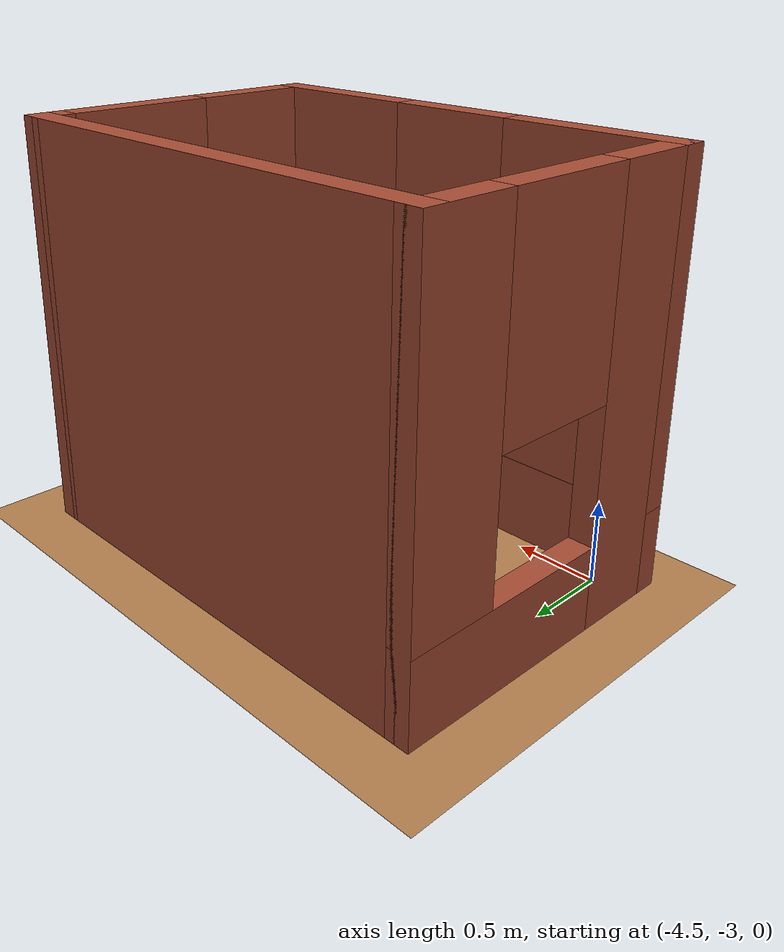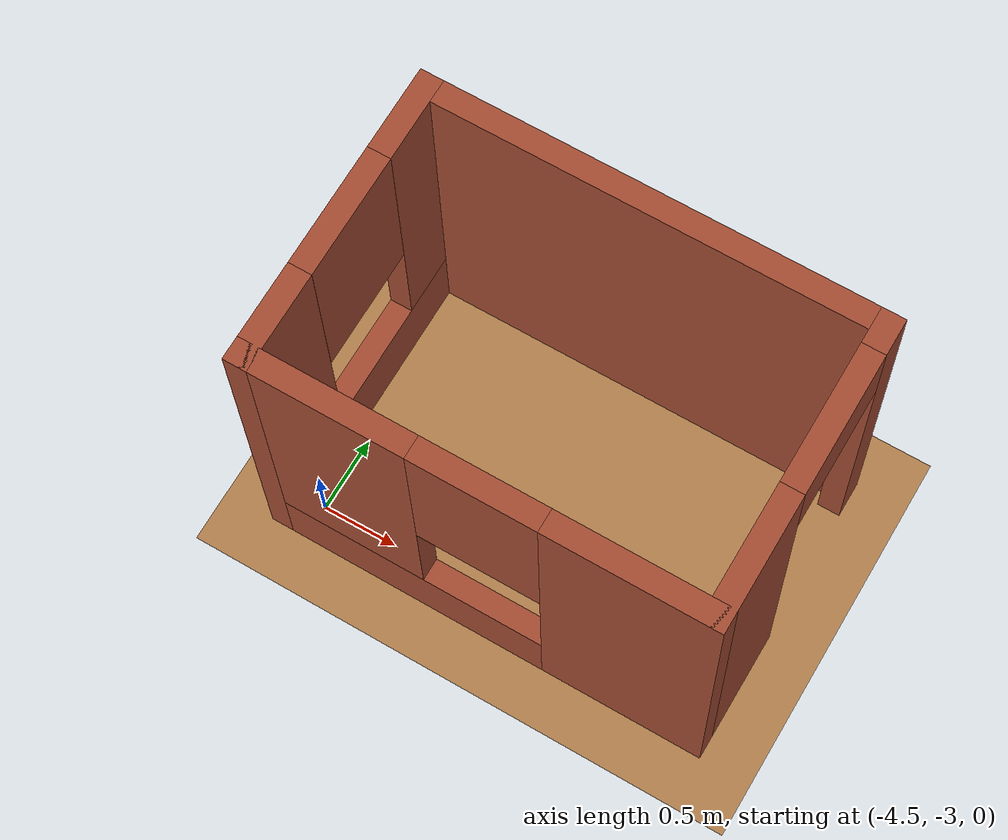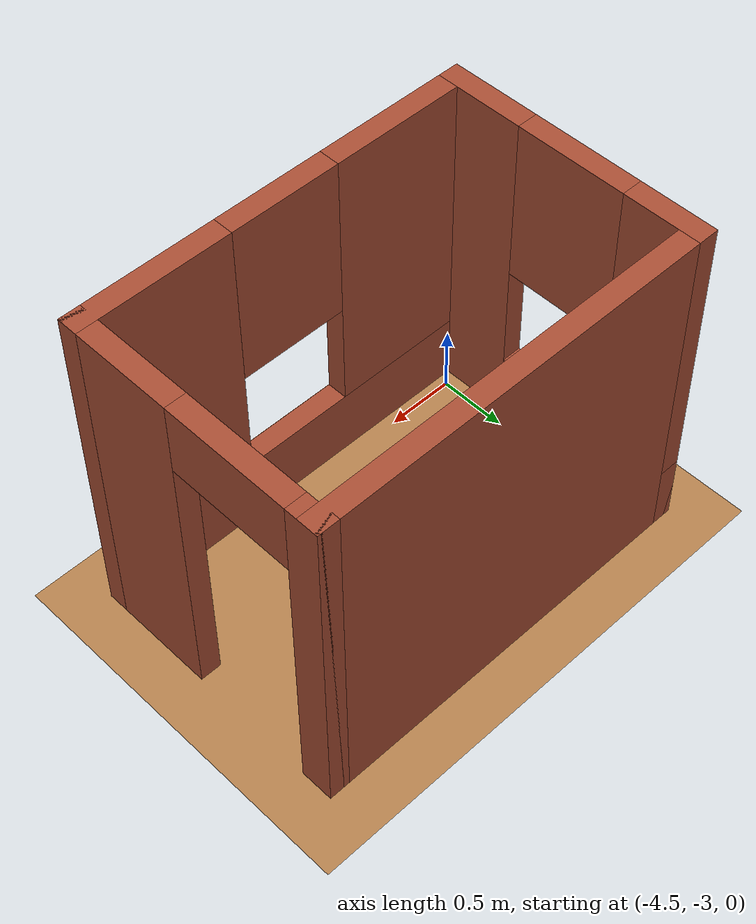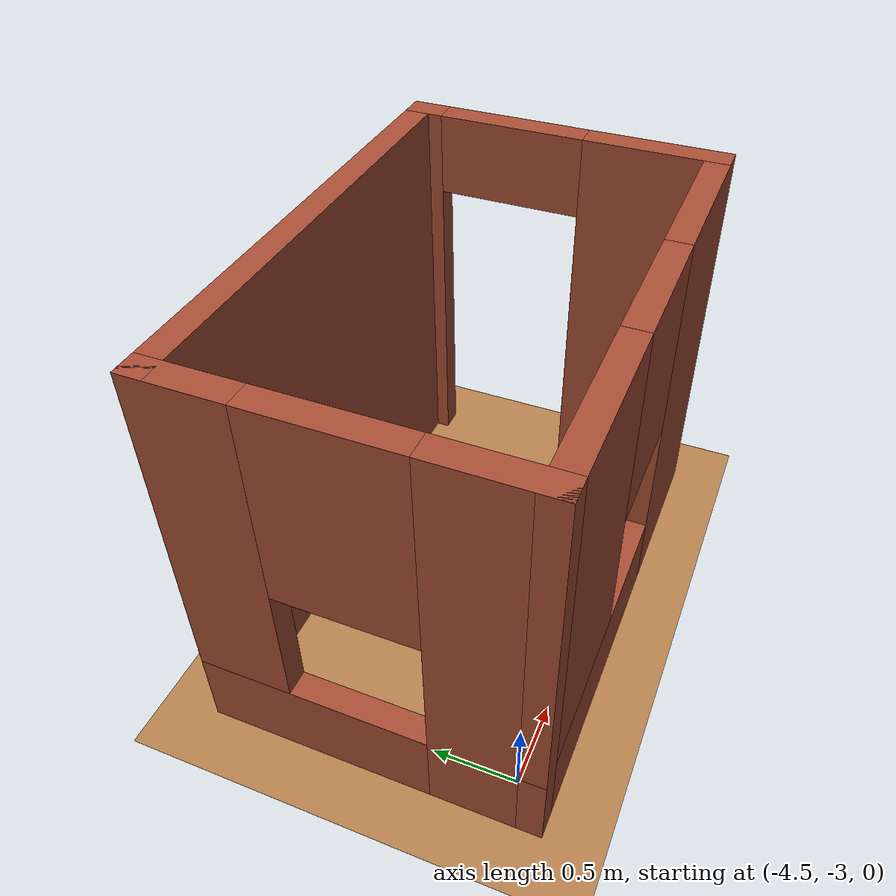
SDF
<sdf version="1.6">
 <world name="default">
  <light name="sun" type="directional">
   <pose>0 0 10 0 -0 0</pose>
   <diffuse>0.8 0.8 0.8 1</diffuse>
   <specular>0.2 0.2 0.2 1</specular>
   <attenuation>
    <range>1000</range>
    <constant>0.9</constant>
    <linear>0.01</linear>
    <quadratic>0.001</quadratic>
   </attenuation>
   <direction>-0.5 0.1 -0.9</direction>
  </light>
  <model name="ground_plane">
   <static>1</static>
   <link name="link">
    <collision name="collision">
     <geometry><plane><normal>0 0 1</normal><size>100000 100000</size></plane></geometry>
     <surface>
      <contact><collide_bitmask>65535</collide_bitmask></contact>
      <friction><ode><mu>100</mu><mu2>50</mu2></ode></friction>
     </surface>
    </collision>
    <visual name="visual">
     <cast_shadows>0</cast_shadows>
     <geometry><plane><normal>0 0 1</normal><size>100 100</size></plane></geometry>
     <material>
      <script><uri>file://media/materials/scripts/gazebo.material</uri><name>Gazebo/WoodFloor</name></script>
     </material>
    </visual>
   </link>
  </model>
  <gravity>0 0 -9.8</gravity>
  <magnetic_field>6e-06 2.3e-05 -4.2e-05</magnetic_field>
  <atmosphere type="adiabatic"/>
  <physics name="default_physics" default="0" type="ode">
   <max_step_size>0.0001</max_step_size>
   <real_time_factor>1</real_time_factor>
   <real_time_update_rate>1000</real_time_update_rate>
   <ode><constraints><contact_max_correcting_vel>20000.0</contact_max_correcting_vel></constraints></ode>
  </physics>
  <scene><ambient>0.4 0.4 0.4 1</ambient><background>0.7 0.7 0.7 1</background><shadows>1</shadows></scene>
  <audio><device>default</device></audio>
  <spherical_coordinates>
   <surface_model>EARTH_WGS84</surface_model>
   <latitude_deg>0</latitude_deg>
   <longitude_deg>0</longitude_deg>
   <elevation>0</elevation>
   <heading_deg>0</heading_deg>
  </spherical_coordinates>
  <model name="casa_simples">
   <pose>-3.245 -2.225 0 0 -0 0</pose>
   <link name="Wall_0">
    <pose>-1.425 0 0 0 -0 1.5708</pose>
    <visual name="Wall_0_Visual_0">
     <pose>-0.6775 0 1.25 0 -0 0</pose>
     <geometry><box><size>0.645 0.15 2.5</size></box></geometry>
     <material>
      <script><uri>file://media/materials/scripts/gazebo.material</uri><name>Gazebo/Bricks</name></script>
      <ambient>1 1 1 1</ambient>
     </material>
     <meta><layer>0</layer></meta>
    </visual>
    <collision name="Wall_0_Collision_0">
     <geometry><box><size>0.645 0.15 2.5</size></box></geometry>
     <pose>-0.6775 0 1.25 0 -0 0</pose>
    </collision>
    <visual name="Wall_0_Visual_1">
     <pose>0.3225 0 0.25 0 -0 0</pose>
     <geometry><box><size>1.355 0.15 0.5</size></box></geometry>
     <material>
      <script><uri>file://media/materials/scripts/gazebo.material</uri><name>Gazebo/Bricks</name></script>
      <ambient>1 1 1 1</ambient>
     </material>
     <meta><layer>0</layer></meta>
    </visual>
    <collision name="Wall_0_Collision_1">
     <geometry><box><size>1.355 0.15 0.5</size></box></geometry>
     <pose>0.3225 0 0.25 0 -0 0</pose>
    </collision>
    <visual name="Wall_0_Visual_2">
     <pose>0.7225 0 1.5 0 -0 0</pose>
     <geometry><box><size>0.555 0.15 2</size></box></geometry>
     <material>
      <script><uri>file://media/materials/scripts/gazebo.material</uri><name>Gazebo/Bricks</name></script>
      <ambient>1 1 1 1</ambient>
     </material>
     <meta><layer>0</layer></meta>
    </visual>
    <collision name="Wall_0_Collision_2">
     <geometry><box><size>0.555 0.15 2</size></box></geometry>
     <pose>0.7225 0 1.5 0 -0 0</pose>
    </collision>
    <visual name="Wall_0_Visual_3">
     <pose>0.045 0 1.9 0 -0 0</pose>
     <geometry><box><size>0.8 0.15 1.2</size></box></geometry>
     <material>
      <script><uri>file://media/materials/scripts/gazebo.material</uri><name>Gazebo/Bricks</name></script>
      <ambient>1 1 1 1</ambient>
     </material>
     <meta><layer>0</layer></meta>
    </visual>
    <collision name="Wall_0_Collision_3">
     <geometry><box><size>0.8 0.15 1.2</size></box></geometry>
     <pose>0.045 0 1.9 0 -0 0</pose>
    </collision>
   </link>
   <link name="Wall_1">
    <collision name="Wall_1_Collision">
     <geometry><box><size>3 0.15 2.5</size></box></geometry>
     <pose>0 0 1.25 0 -0 0</pose>
    </collision>
    <visual name="Wall_1_Visual">
     <pose>0 0 1.25 0 -0 0</pose>
     <geometry><box><size>3 0.15 2.5</size></box></geometry>
     <material>
      <script><uri>file://media/materials/scripts/gazebo.material</uri><name>Gazebo/Bricks</name></script>
      <ambient>1 1 1 1</ambient>
     </material>
     <meta><layer>0</layer></meta>
    </visual>
    <pose>0 0.925 0 0 -0 0</pose>
   </link>
   <link name="Wall_2">
    <pose>1.425 0 0 0 -0 -1.5708</pose>
    <visual name="Wall_2_Visual_0">
     <pose>-0.8825 0 1.25 0 -0 0</pose>
     <geometry><box><size>0.235 0.15 2.5</size></box></geometry>
     <material>
      <script><uri>file://media/materials/scripts/gazebo.material</uri><name>Gazebo/Bricks</name></script>
      <ambient>1 1 1 1</ambient>
     </material>
     <meta><layer>0</layer></meta>
    </visual>
    <collision name="Wall_2_Collision_0">
     <geometry><box><size>0.235 0.15 2.5</size></box></geometry>
     <pose>-0.8825 0 1.25 0 -0 0</pose>
    </collision>
    <visual name="Wall_2_Visual_1">
     <pose>0.5675 0 1.25 0 -0 0</pose>
     <geometry><box><size>0.865 0.15 2.5</size></box></geometry>
     <material>
      <script><uri>file://media/materials/scripts/gazebo.material</uri><name>Gazebo/Bricks</name></script>
      <ambient>1 1 1 1</ambient>
     </material>
     <meta><layer>0</layer></meta>
    </visual>
    <collision name="Wall_2_Collision_1">
     <geometry><box><size>0.865 0.15 2.5</size></box></geometry>
     <pose>0.5675 0 1.25 0 -0 0</pose>
    </collision>
    <visual name="Wall_2_Visual_2">
     <pose>-0.315 0 2.25 0 -0 0</pose>
     <geometry><box><size>0.9 0.15 0.5</size></box></geometry>
     <material>
      <script><uri>file://media/materials/scripts/gazebo.material</uri><name>Gazebo/Bricks</name></script>
      <ambient>1 1 1 1</ambient>
     </material>
     <meta><layer>0</layer></meta>
    </visual>
    <collision name="Wall_2_Collision_2">
     <geometry><box><size>0.9 0.15 0.5</size></box></geometry>
     <pose>-0.315 0 2.25 0 -0 0</pose>
    </collision>
   </link>
   <link name="Wall_3">
    <pose>0 -0.925 0 0 -0 3.14159</pose>
    <visual name="Wall_3_Visual_0">
     <pose>-0.9575 0 1.25 0 -0 0</pose>
     <geometry><box><size>1.085 0.15 2.5</size></box></geometry>
     <material>
      <script><uri>file://media/materials/scripts/gazebo.material</uri><name>Gazebo/Bricks</name></script>
      <ambient>1 1 1 1</ambient>
     </material>
     <meta><layer>0</layer></meta>
    </visual>
    <collision name="Wall_3_Collision_0">
     <geometry><box><size>1.085 0.15 2.5</size></box></geometry>
     <pose>-0.9575 0 1.25 0 -0 0</pose>
    </collision>
    <visual name="Wall_3_Visual_1">
     <pose>0.5425 0 0.25 0 -0 0</pose>
     <geometry><box><size>1.915 0.15 0.5</size></box></geometry>
     <material>
      <script><uri>file://media/materials/scripts/gazebo.material</uri><name>Gazebo/Bricks</name></script>
      <ambient>1 1 1 1</ambient>
     </material>
     <meta><layer>0</layer></meta>
    </visual>
    <collision name="Wall_3_Collision_1">
     <geometry><box><size>1.915 0.15 0.5</size></box></geometry>
     <pose>0.5425 0 0.25 0 -0 0</pose>
    </collision>
    <visual name="Wall_3_Visual_2">
     <pose>0.9425 0 1.5 0 -0 0</pose>
     <geometry><box><size>1.115 0.15 2</size></box></geometry>
     <material>
      <script><uri>file://media/materials/scripts/gazebo.material</uri><name>Gazebo/Bricks</name></script>
      <ambient>1 1 1 1</ambient>
     </material>
     <meta><layer>0</layer></meta>
    </visual>
    <collision name="Wall_3_Collision_2">
     <geometry><box><size>1.115 0.15 2</size></box></geometry>
     <pose>0.9425 0 1.5 0 -0 0</pose>
    </collision>
    <visual name="Wall_3_Visual_3">
     <pose>-0.015 0 1.9 0 -0 0</pose>
     <geometry><box><size>0.8 0.15 1.2</size></box></geometry>
     <material>
      <script><uri>file://media/materials/scripts/gazebo.material</uri><name>Gazebo/Bricks</name></script>
      <ambient>1 1 1 1</ambient>
     </material>
     <meta><layer>0</layer></meta>
    </visual>
    <collision name="Wall_3_Collision_3">
     <geometry><box><size>0.8 0.15 1.2</size></box></geometry>
     <pose>-0.015 0 1.9 0 -0 0</pose>
    </collision>
   </link>
   <static>1</static>
  </model>
 </world>
</sdf>
